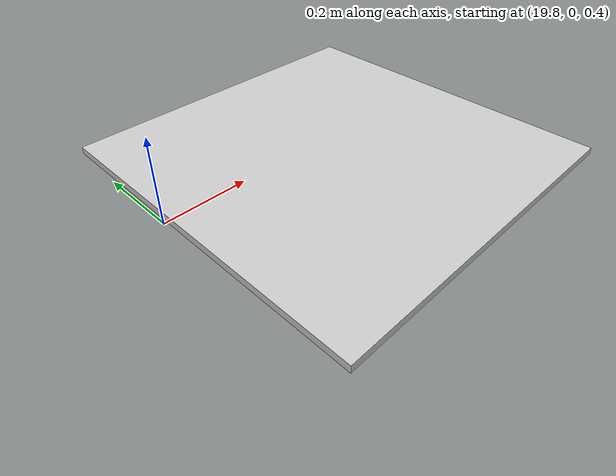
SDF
<?xml version="1.0" ?>
<sdf version="1.7">
  <world name="ramp_world">

    <plugin name='ignition::gazebo::systems::Physics' filename='libignition-gazebo-physics-system.so'/>
    <plugin name='ignition::gazebo::systems::UserCommands' filename='libignition-gazebo-user-commands-system.so'/>
    <plugin name='ignition::gazebo::systems::SceneBroadcaster' filename='libignition-gazebo-scene-broadcaster-system.so'/>
    <plugin name='ignition::gazebo::systems::Sensors' filename='ignition-gazebo-sensors-system'>
      <render_engine>ogre2</render_engine>
    </plugin>

    <!-- Basic scene -->
    <gravity>0 0 -9.81</gravity>

    <physics name="default_physics" type="bullet">
      <!-- 1 ms keeps magnetic contact stable while halving the step count. -->
      <max_step_size>0.001</max_step_size>
      <real_time_factor>1.0</real_time_factor>
      <real_time_update_rate>1000</real_time_update_rate>
    </physics>

    <light type="directional" name="sun">
      <cast_shadows>true</cast_shadows>
      <pose>-2.5 2.5 2 0 0 0</pose>
      <diffuse>0.8 0.8 0.8 1</diffuse>
      <specular>0.2 0.2 0.2 1</specular>
      <attenuation>
        <range>1000</range>
        <constant>0.9</constant>
        <linear>0.01</linear>
        <quadratic>0.001</quadratic>
      </attenuation>
      <direction>0 0 -3</direction>
    </light>

    <!-- Curved ramp: replace the mesh URI with your STL/DAE/OBJ -->
    <model name="ramp">
      <static>true</static>

      <!-- Place it between ground and wall. Adjust x/z until it touches nicely. -->
      <pose>2 0 0 0 0 -1.570796</pose>

      <link name="link">
        <collision name="collision">
          <geometry>
            <mesh>
              <uri>meshes/ramp.stl</uri>
              <scale>1 1 1</scale>
            </mesh>
          </geometry>

          <!-- Tune grip -->
          <surface>
            <friction>
              <ode>
                <mu>1.4</mu>
                <mu2>1.4</mu2>
              </ode>
            </friction>
          </surface>
        </collision>
        <visual name="visual">
          <geometry>
            <mesh>
              <uri>meshes/ramp.stl</uri>
              <scale>1 1 1</scale>
            </mesh>
          </geometry>
          <material>
            <double_sided>true</double_sided>
            <ambient>0.8 0.8 0.8 1</ambient>
            <diffuse>0.8 0.8 0.8 1</diffuse>
            <specular>0.8 0.8 0.8 1</specular>
          </material>
        </visual>

      </link>
    </model>

    <!-- Primitive collision for the vertical magnetic wall. Gazebo Harmonic's
         DART backend cannot create collision geometry from this STL mesh. -->
    <model name="magnetic_wall_collision">
      <static>true</static>
      <pose>3.055747 0 3.013563 0 0 0</pose>
      <link name="wall_link">
        <collision name="wall_collision">
          <geometry>
            <box>
              <size>0.111494 5.0 4.027126</size>
            </box>
          </geometry>
          <surface>
            <friction>
              <ode>
                <mu>1.4</mu>
                <mu2>1.4</mu2>
              </ode>
            </friction>
          </surface>
        </collision>
      </link>
    </model>

    <!-- Optional: set the initial camera view (handy) -->
    <gui fullscreen="0">
      <camera name="user_camera">
        <pose>0 -6 2 0 0.25 1.57</pose>
      </camera>
    </gui>

  </world>
</sdf>
